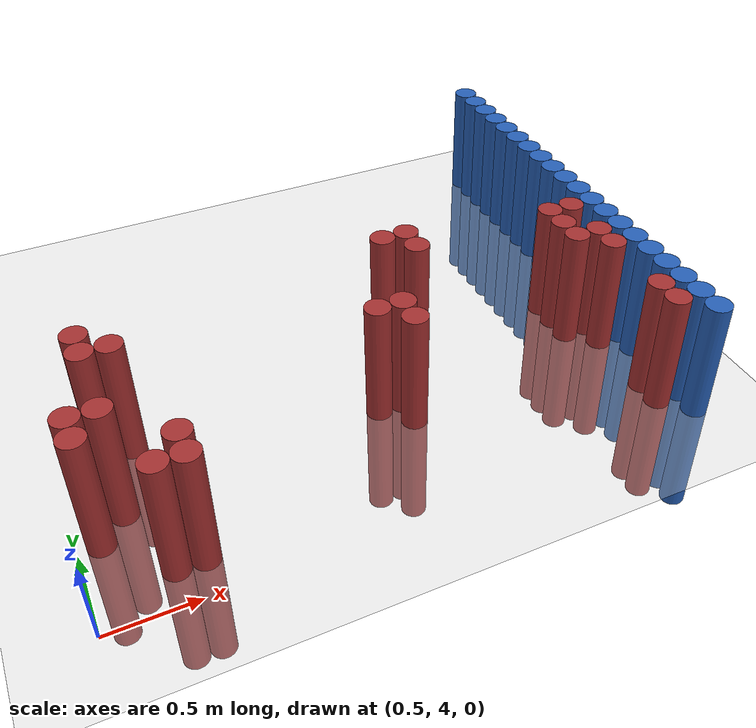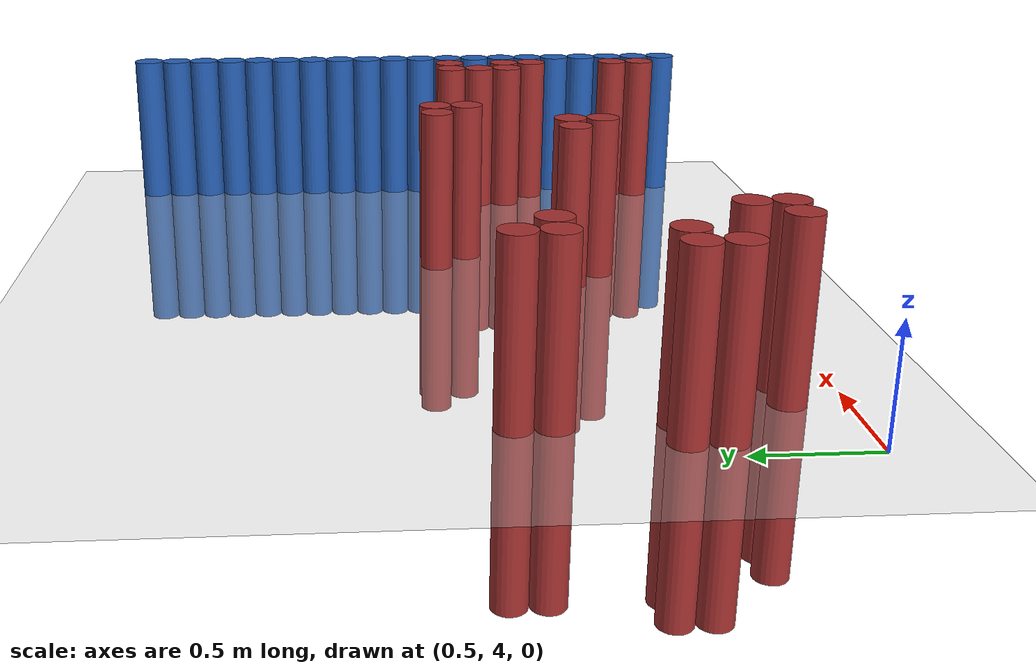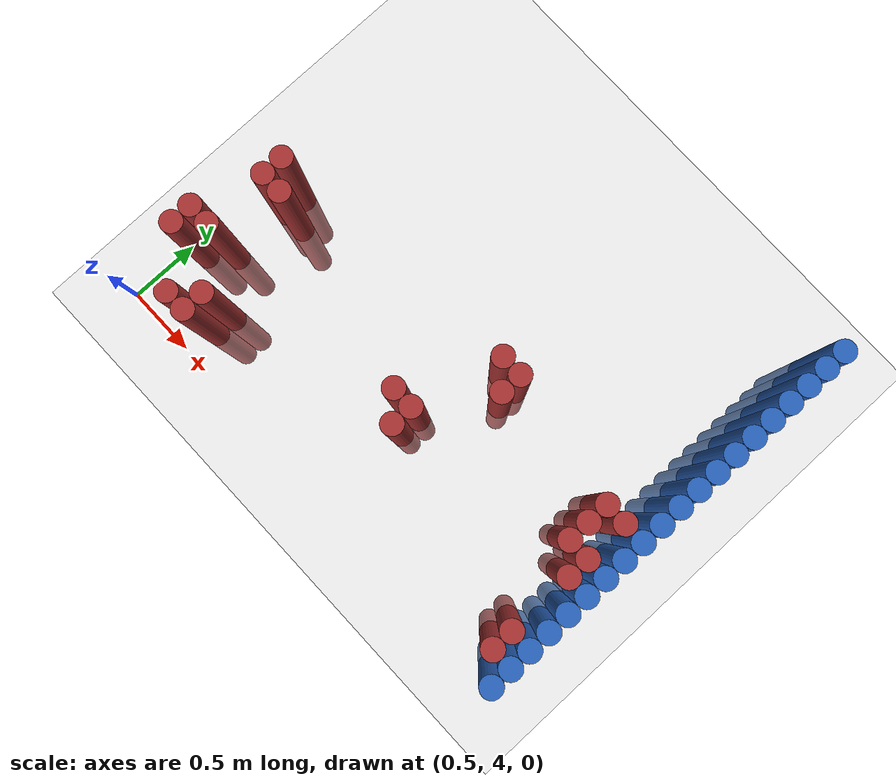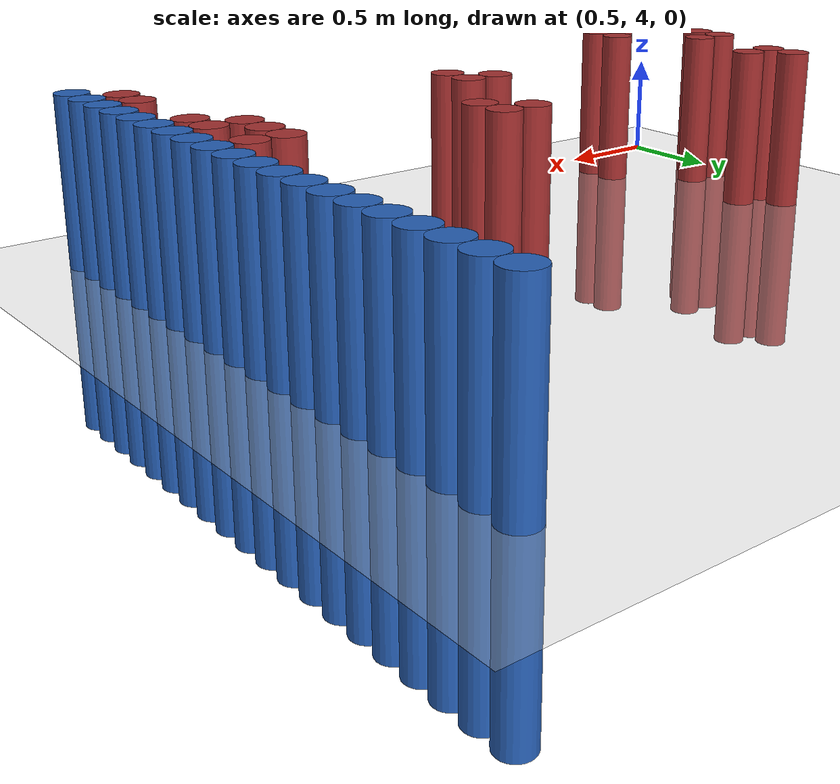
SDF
<sdf version="1.6">
 <world name="default">
  <model name="ground_plane">
   <static>1</static>
   <link name="link">
    <collision name="collision">
     <geometry><plane><normal>0 0 1</normal><size>100 100</size></plane></geometry>
     <surface><friction><ode><mu>100</mu><mu2>50</mu2></ode></friction></surface>
    </collision>
    <visual name="visual">
     <cast_shadows>0</cast_shadows>
     <geometry><plane><normal>0 0 1</normal><size>100 100</size></plane></geometry>
     <material>
      <script><uri>file://media/materials/scripts/gazebo.material</uri><name>Gazebo/Grey</name></script>
     </material>
    </visual>
   </link>
  </model>
  <model name="unit_cylinder_168">
   <static>1</static>
   <pose>3.925000 4.075000 0.000000 0.000000 0.000000 0.000000</pose>
   <link name="link">
    <inertial>
     <mass>1</mass>
     <inertia><ixx>0.145833</ixx><ixy>0</ixy><ixz>0</ixz><iyy>0.145833</iyy><iyz>0</iyz><izz>0.125</izz></inertia>
    </inertial>
    <collision name="collision">
     <geometry><cylinder><radius>0.075000</radius><length>1.5</length></cylinder></geometry>
    </collision>
    <visual name="visual">
     <geometry><cylinder><radius>0.075000</radius><length>1.5</length></cylinder></geometry>
     <material>
      <ambient>0.152000 0.379000 0.720000 1</ambient>
      <diffuse>0.152000 0.379000 0.720000 1</diffuse>
     </material>
     <material>
      <script><name>Gazebo/Grey</name><uri>file://media/materials/scripts/gazebo.material</uri></script>
     </material>
    </visual>
   </link>
  </model>
  <model name="unit_cylinder_170">
   <static>1</static>
   <pose>3.925000 4.225000 0.000000 0.000000 0.000000 0.000000</pose>
   <link name="link">
    <inertial>
     <mass>1</mass>
     <inertia><ixx>0.145833</ixx><ixy>0</ixy><ixz>0</ixz><iyy>0.145833</iyy><iyz>0</iyz><izz>0.125</izz></inertia>
    </inertial>
    <collision name="collision">
     <geometry><cylinder><radius>0.075000</radius><length>1.5</length></cylinder></geometry>
    </collision>
    <visual name="visual">
     <geometry><cylinder><radius>0.075000</radius><length>1.5</length></cylinder></geometry>
     <material>
      <ambient>0.152000 0.379000 0.720000 1</ambient>
      <diffuse>0.152000 0.379000 0.720000 1</diffuse>
     </material>
     <material>
      <script><name>Gazebo/Grey</name><uri>file://media/materials/scripts/gazebo.material</uri></script>
     </material>
    </visual>
   </link>
  </model>
  <model name="unit_cylinder_172">
   <static>1</static>
   <pose>3.925000 4.375000 0.000000 0.000000 0.000000 0.000000</pose>
   <link name="link">
    <inertial>
     <mass>1</mass>
     <inertia><ixx>0.145833</ixx><ixy>0</ixy><ixz>0</ixz><iyy>0.145833</iyy><iyz>0</iyz><izz>0.125</izz></inertia>
    </inertial>
    <collision name="collision">
     <geometry><cylinder><radius>0.075000</radius><length>1.5</length></cylinder></geometry>
    </collision>
    <visual name="visual">
     <geometry><cylinder><radius>0.075000</radius><length>1.5</length></cylinder></geometry>
     <material>
      <ambient>0.152000 0.379000 0.720000 1</ambient>
      <diffuse>0.152000 0.379000 0.720000 1</diffuse>
     </material>
     <material>
      <script><name>Gazebo/Grey</name><uri>file://media/materials/scripts/gazebo.material</uri></script>
     </material>
    </visual>
   </link>
  </model>
  <model name="unit_cylinder_174">
   <static>1</static>
   <pose>3.925000 4.525000 0.000000 0.000000 0.000000 0.000000</pose>
   <link name="link">
    <inertial>
     <mass>1</mass>
     <inertia><ixx>0.145833</ixx><ixy>0</ixy><ixz>0</ixz><iyy>0.145833</iyy><iyz>0</iyz><izz>0.125</izz></inertia>
    </inertial>
    <collision name="collision">
     <geometry><cylinder><radius>0.075000</radius><length>1.5</length></cylinder></geometry>
    </collision>
    <visual name="visual">
     <geometry><cylinder><radius>0.075000</radius><length>1.5</length></cylinder></geometry>
     <material>
      <ambient>0.152000 0.379000 0.720000 1</ambient>
      <diffuse>0.152000 0.379000 0.720000 1</diffuse>
     </material>
     <material>
      <script><name>Gazebo/Grey</name><uri>file://media/materials/scripts/gazebo.material</uri></script>
     </material>
    </visual>
   </link>
  </model>
  <model name="unit_cylinder_176">
   <static>1</static>
   <pose>3.925000 4.675000 0.000000 0.000000 0.000000 0.000000</pose>
   <link name="link">
    <inertial>
     <mass>1</mass>
     <inertia><ixx>0.145833</ixx><ixy>0</ixy><ixz>0</ixz><iyy>0.145833</iyy><iyz>0</iyz><izz>0.125</izz></inertia>
    </inertial>
    <collision name="collision">
     <geometry><cylinder><radius>0.075000</radius><length>1.5</length></cylinder></geometry>
    </collision>
    <visual name="visual">
     <geometry><cylinder><radius>0.075000</radius><length>1.5</length></cylinder></geometry>
     <material>
      <ambient>0.152000 0.379000 0.720000 1</ambient>
      <diffuse>0.152000 0.379000 0.720000 1</diffuse>
     </material>
     <material>
      <script><name>Gazebo/Grey</name><uri>file://media/materials/scripts/gazebo.material</uri></script>
     </material>
    </visual>
   </link>
  </model>
  <model name="unit_cylinder_178">
   <static>1</static>
   <pose>3.925000 4.825000 0.000000 0.000000 0.000000 0.000000</pose>
   <link name="link">
    <inertial>
     <mass>1</mass>
     <inertia><ixx>0.145833</ixx><ixy>0</ixy><ixz>0</ixz><iyy>0.145833</iyy><iyz>0</iyz><izz>0.125</izz></inertia>
    </inertial>
    <collision name="collision">
     <geometry><cylinder><radius>0.075000</radius><length>1.5</length></cylinder></geometry>
    </collision>
    <visual name="visual">
     <geometry><cylinder><radius>0.075000</radius><length>1.5</length></cylinder></geometry>
     <material>
      <ambient>0.152000 0.379000 0.720000 1</ambient>
      <diffuse>0.152000 0.379000 0.720000 1</diffuse>
     </material>
     <material>
      <script><name>Gazebo/Grey</name><uri>file://media/materials/scripts/gazebo.material</uri></script>
     </material>
    </visual>
   </link>
  </model>
  <model name="unit_cylinder_180">
   <static>1</static>
   <pose>3.925000 4.975000 0.000000 0.000000 0.000000 0.000000</pose>
   <link name="link">
    <inertial>
     <mass>1</mass>
     <inertia><ixx>0.145833</ixx><ixy>0</ixy><ixz>0</ixz><iyy>0.145833</iyy><iyz>0</iyz><izz>0.125</izz></inertia>
    </inertial>
    <collision name="collision">
     <geometry><cylinder><radius>0.075000</radius><length>1.5</length></cylinder></geometry>
    </collision>
    <visual name="visual">
     <geometry><cylinder><radius>0.075000</radius><length>1.5</length></cylinder></geometry>
     <material>
      <ambient>0.152000 0.379000 0.720000 1</ambient>
      <diffuse>0.152000 0.379000 0.720000 1</diffuse>
     </material>
     <material>
      <script><name>Gazebo/Grey</name><uri>file://media/materials/scripts/gazebo.material</uri></script>
     </material>
    </visual>
   </link>
  </model>
  <model name="unit_cylinder_182">
   <static>1</static>
   <pose>3.925000 5.125000 0.000000 0.000000 0.000000 0.000000</pose>
   <link name="link">
    <inertial>
     <mass>1</mass>
     <inertia><ixx>0.145833</ixx><ixy>0</ixy><ixz>0</ixz><iyy>0.145833</iyy><iyz>0</iyz><izz>0.125</izz></inertia>
    </inertial>
    <collision name="collision">
     <geometry><cylinder><radius>0.075000</radius><length>1.5</length></cylinder></geometry>
    </collision>
    <visual name="visual">
     <geometry><cylinder><radius>0.075000</radius><length>1.5</length></cylinder></geometry>
     <material>
      <ambient>0.152000 0.379000 0.720000 1</ambient>
      <diffuse>0.152000 0.379000 0.720000 1</diffuse>
     </material>
     <material>
      <script><name>Gazebo/Grey</name><uri>file://media/materials/scripts/gazebo.material</uri></script>
     </material>
    </visual>
   </link>
  </model>
  <model name="unit_cylinder_184">
   <static>1</static>
   <pose>3.925000 5.275000 0.000000 0.000000 0.000000 0.000000</pose>
   <link name="link">
    <inertial>
     <mass>1</mass>
     <inertia><ixx>0.145833</ixx><ixy>0</ixy><ixz>0</ixz><iyy>0.145833</iyy><iyz>0</iyz><izz>0.125</izz></inertia>
    </inertial>
    <collision name="collision">
     <geometry><cylinder><radius>0.075000</radius><length>1.5</length></cylinder></geometry>
    </collision>
    <visual name="visual">
     <geometry><cylinder><radius>0.075000</radius><length>1.5</length></cylinder></geometry>
     <material>
      <ambient>0.152000 0.379000 0.720000 1</ambient>
      <diffuse>0.152000 0.379000 0.720000 1</diffuse>
     </material>
     <material>
      <script><name>Gazebo/Grey</name><uri>file://media/materials/scripts/gazebo.material</uri></script>
     </material>
    </visual>
   </link>
  </model>
  <model name="unit_cylinder_186">
   <static>1</static>
   <pose>3.925000 5.425000 0.000000 0.000000 0.000000 0.000000</pose>
   <link name="link">
    <inertial>
     <mass>1</mass>
     <inertia><ixx>0.145833</ixx><ixy>0</ixy><ixz>0</ixz><iyy>0.145833</iyy><iyz>0</iyz><izz>0.125</izz></inertia>
    </inertial>
    <collision name="collision">
     <geometry><cylinder><radius>0.075000</radius><length>1.5</length></cylinder></geometry>
    </collision>
    <visual name="visual">
     <geometry><cylinder><radius>0.075000</radius><length>1.5</length></cylinder></geometry>
     <material>
      <ambient>0.152000 0.379000 0.720000 1</ambient>
      <diffuse>0.152000 0.379000 0.720000 1</diffuse>
     </material>
     <material>
      <script><name>Gazebo/Grey</name><uri>file://media/materials/scripts/gazebo.material</uri></script>
     </material>
    </visual>
   </link>
  </model>
  <model name="unit_cylinder_188">
   <static>1</static>
   <pose>3.925000 5.575000 0.000000 0.000000 0.000000 0.000000</pose>
   <link name="link">
    <inertial>
     <mass>1</mass>
     <inertia><ixx>0.145833</ixx><ixy>0</ixy><ixz>0</ixz><iyy>0.145833</iyy><iyz>0</iyz><izz>0.125</izz></inertia>
    </inertial>
    <collision name="collision">
     <geometry><cylinder><radius>0.075000</radius><length>1.5</length></cylinder></geometry>
    </collision>
    <visual name="visual">
     <geometry><cylinder><radius>0.075000</radius><length>1.5</length></cylinder></geometry>
     <material>
      <ambient>0.152000 0.379000 0.720000 1</ambient>
      <diffuse>0.152000 0.379000 0.720000 1</diffuse>
     </material>
     <material>
      <script><name>Gazebo/Grey</name><uri>file://media/materials/scripts/gazebo.material</uri></script>
     </material>
    </visual>
   </link>
  </model>
  <model name="unit_cylinder_190">
   <static>1</static>
   <pose>3.925000 5.725000 0.000000 0.000000 0.000000 0.000000</pose>
   <link name="link">
    <inertial>
     <mass>1</mass>
     <inertia><ixx>0.145833</ixx><ixy>0</ixy><ixz>0</ixz><iyy>0.145833</iyy><iyz>0</iyz><izz>0.125</izz></inertia>
    </inertial>
    <collision name="collision">
     <geometry><cylinder><radius>0.075000</radius><length>1.5</length></cylinder></geometry>
    </collision>
    <visual name="visual">
     <geometry><cylinder><radius>0.075000</radius><length>1.5</length></cylinder></geometry>
     <material>
      <ambient>0.152000 0.379000 0.720000 1</ambient>
      <diffuse>0.152000 0.379000 0.720000 1</diffuse>
     </material>
     <material>
      <script><name>Gazebo/Grey</name><uri>file://media/materials/scripts/gazebo.material</uri></script>
     </material>
    </visual>
   </link>
  </model>
  <model name="unit_cylinder_192">
   <static>1</static>
   <pose>3.925000 5.875000 0.000000 0.000000 0.000000 0.000000</pose>
   <link name="link">
    <inertial>
     <mass>1</mass>
     <inertia><ixx>0.145833</ixx><ixy>0</ixy><ixz>0</ixz><iyy>0.145833</iyy><iyz>0</iyz><izz>0.125</izz></inertia>
    </inertial>
    <collision name="collision">
     <geometry><cylinder><radius>0.075000</radius><length>1.5</length></cylinder></geometry>
    </collision>
    <visual name="visual">
     <geometry><cylinder><radius>0.075000</radius><length>1.5</length></cylinder></geometry>
     <material>
      <ambient>0.152000 0.379000 0.720000 1</ambient>
      <diffuse>0.152000 0.379000 0.720000 1</diffuse>
     </material>
     <material>
      <script><name>Gazebo/Grey</name><uri>file://media/materials/scripts/gazebo.material</uri></script>
     </material>
    </visual>
   </link>
  </model>
  <model name="unit_cylinder_194">
   <static>1</static>
   <pose>3.925000 6.025000 0.000000 0.000000 0.000000 0.000000</pose>
   <link name="link">
    <inertial>
     <mass>1</mass>
     <inertia><ixx>0.145833</ixx><ixy>0</ixy><ixz>0</ixz><iyy>0.145833</iyy><iyz>0</iyz><izz>0.125</izz></inertia>
    </inertial>
    <collision name="collision">
     <geometry><cylinder><radius>0.075000</radius><length>1.5</length></cylinder></geometry>
    </collision>
    <visual name="visual">
     <geometry><cylinder><radius>0.075000</radius><length>1.5</length></cylinder></geometry>
     <material>
      <ambient>0.152000 0.379000 0.720000 1</ambient>
      <diffuse>0.152000 0.379000 0.720000 1</diffuse>
     </material>
     <material>
      <script><name>Gazebo/Grey</name><uri>file://media/materials/scripts/gazebo.material</uri></script>
     </material>
    </visual>
   </link>
  </model>
  <model name="unit_cylinder_196">
   <static>1</static>
   <pose>3.925000 6.175000 0.000000 0.000000 0.000000 0.000000</pose>
   <link name="link">
    <inertial>
     <mass>1</mass>
     <inertia><ixx>0.145833</ixx><ixy>0</ixy><ixz>0</ixz><iyy>0.145833</iyy><iyz>0</iyz><izz>0.125</izz></inertia>
    </inertial>
    <collision name="collision">
     <geometry><cylinder><radius>0.075000</radius><length>1.5</length></cylinder></geometry>
    </collision>
    <visual name="visual">
     <geometry><cylinder><radius>0.075000</radius><length>1.5</length></cylinder></geometry>
     <material>
      <ambient>0.152000 0.379000 0.720000 1</ambient>
      <diffuse>0.152000 0.379000 0.720000 1</diffuse>
     </material>
     <material>
      <script><name>Gazebo/Grey</name><uri>file://media/materials/scripts/gazebo.material</uri></script>
     </material>
    </visual>
   </link>
  </model>
  <model name="unit_cylinder_198">
   <static>1</static>
   <pose>3.925000 6.325000 0.000000 0.000000 0.000000 0.000000</pose>
   <link name="link">
    <inertial>
     <mass>1</mass>
     <inertia><ixx>0.145833</ixx><ixy>0</ixy><ixz>0</ixz><iyy>0.145833</iyy><iyz>0</iyz><izz>0.125</izz></inertia>
    </inertial>
    <collision name="collision">
     <geometry><cylinder><radius>0.075000</radius><length>1.5</length></cylinder></geometry>
    </collision>
    <visual name="visual">
     <geometry><cylinder><radius>0.075000</radius><length>1.5</length></cylinder></geometry>
     <material>
      <ambient>0.152000 0.379000 0.720000 1</ambient>
      <diffuse>0.152000 0.379000 0.720000 1</diffuse>
     </material>
     <material>
      <script><name>Gazebo/Grey</name><uri>file://media/materials/scripts/gazebo.material</uri></script>
     </material>
    </visual>
   </link>
  </model>
  <model name="unit_cylinder_200">
   <static>1</static>
   <pose>3.925000 6.475000 0.000000 0.000000 0.000000 0.000000</pose>
   <link name="link">
    <inertial>
     <mass>1</mass>
     <inertia><ixx>0.145833</ixx><ixy>0</ixy><ixz>0</ixz><iyy>0.145833</iyy><iyz>0</iyz><izz>0.125</izz></inertia>
    </inertial>
    <collision name="collision">
     <geometry><cylinder><radius>0.075000</radius><length>1.5</length></cylinder></geometry>
    </collision>
    <visual name="visual">
     <geometry><cylinder><radius>0.075000</radius><length>1.5</length></cylinder></geometry>
     <material>
      <ambient>0.152000 0.379000 0.720000 1</ambient>
      <diffuse>0.152000 0.379000 0.720000 1</diffuse>
     </material>
     <material>
      <script><name>Gazebo/Grey</name><uri>file://media/materials/scripts/gazebo.material</uri></script>
     </material>
    </visual>
   </link>
  </model>
  <model name="unit_cylinder_202">
   <static>1</static>
   <pose>3.925000 6.625000 0.000000 0.000000 0.000000 0.000000</pose>
   <link name="link">
    <inertial>
     <mass>1</mass>
     <inertia><ixx>0.145833</ixx><ixy>0</ixy><ixz>0</ixz><iyy>0.145833</iyy><iyz>0</iyz><izz>0.125</izz></inertia>
    </inertial>
    <collision name="collision">
     <geometry><cylinder><radius>0.075000</radius><length>1.5</length></cylinder></geometry>
    </collision>
    <visual name="visual">
     <geometry><cylinder><radius>0.075000</radius><length>1.5</length></cylinder></geometry>
     <material>
      <ambient>0.152000 0.379000 0.720000 1</ambient>
      <diffuse>0.152000 0.379000 0.720000 1</diffuse>
     </material>
     <material>
      <script><name>Gazebo/Grey</name><uri>file://media/materials/scripts/gazebo.material</uri></script>
     </material>
    </visual>
   </link>
  </model>
  <model name="unit_cylinder_204">
   <static>1</static>
   <pose>3.925000 6.775000 0.000000 0.000000 0.000000 0.000000</pose>
   <link name="link">
    <inertial>
     <mass>1</mass>
     <inertia><ixx>0.145833</ixx><ixy>0</ixy><ixz>0</ixz><iyy>0.145833</iyy><iyz>0</iyz><izz>0.125</izz></inertia>
    </inertial>
    <collision name="collision">
     <geometry><cylinder><radius>0.075000</radius><length>1.5</length></cylinder></geometry>
    </collision>
    <visual name="visual">
     <geometry><cylinder><radius>0.075000</radius><length>1.5</length></cylinder></geometry>
     <material>
      <ambient>0.152000 0.379000 0.720000 1</ambient>
      <diffuse>0.152000 0.379000 0.720000 1</diffuse>
     </material>
     <material>
      <script><name>Gazebo/Grey</name><uri>file://media/materials/scripts/gazebo.material</uri></script>
     </material>
    </visual>
   </link>
  </model>
  <model name="unit_cylinder_206">
   <static>1</static>
   <pose>3.925000 6.925000 0.000000 0.000000 0.000000 0.000000</pose>
   <link name="link">
    <inertial>
     <mass>1</mass>
     <inertia><ixx>0.145833</ixx><ixy>0</ixy><ixz>0</ixz><iyy>0.145833</iyy><iyz>0</iyz><izz>0.125</izz></inertia>
    </inertial>
    <collision name="collision">
     <geometry><cylinder><radius>0.075000</radius><length>1.5</length></cylinder></geometry>
    </collision>
    <visual name="visual">
     <geometry><cylinder><radius>0.075000</radius><length>1.5</length></cylinder></geometry>
     <material>
      <ambient>0.152000 0.379000 0.720000 1</ambient>
      <diffuse>0.152000 0.379000 0.720000 1</diffuse>
     </material>
     <material>
      <script><name>Gazebo/Grey</name><uri>file://media/materials/scripts/gazebo.material</uri></script>
     </material>
    </visual>
   </link>
  </model>
  <model name="unit_cylinder_393">
   <static>1</static>
   <pose>0.625000 4.525000 0.000000 0.000000 0.000000 0.000000</pose>
   <link name="link">
    <inertial>
     <mass>1</mass>
     <inertia><ixx>0.145833</ixx><ixy>0</ixy><ixz>0</ixz><iyy>0.145833</iyy><iyz>0</iyz><izz>0.125</izz></inertia>
    </inertial>
    <collision name="collision">
     <geometry><cylinder><radius>0.075000</radius><length>1.5</length></cylinder></geometry>
    </collision>
    <visual name="visual">
     <geometry><cylinder><radius>0.075000</radius><length>1.5</length></cylinder></geometry>
     <material>
      <ambient>0.648000 0.192000 0.192000 1</ambient>
      <diffuse>0.648000 0.192000 0.192000 1</diffuse>
     </material>
     <material>
      <script><name>Gazebo/Grey</name><uri>file://media/materials/scripts/gazebo.material</uri></script>
     </material>
    </visual>
   </link>
  </model>
  <model name="unit_cylinder_394">
   <static>1</static>
   <pose>0.625000 4.675000 0.000000 0.000000 0.000000 0.000000</pose>
   <link name="link">
    <inertial>
     <mass>1</mass>
     <inertia><ixx>0.145833</ixx><ixy>0</ixy><ixz>0</ixz><iyy>0.145833</iyy><iyz>0</iyz><izz>0.125</izz></inertia>
    </inertial>
    <collision name="collision">
     <geometry><cylinder><radius>0.075000</radius><length>1.5</length></cylinder></geometry>
    </collision>
    <visual name="visual">
     <geometry><cylinder><radius>0.075000</radius><length>1.5</length></cylinder></geometry>
     <material>
      <ambient>0.648000 0.192000 0.192000 1</ambient>
      <diffuse>0.648000 0.192000 0.192000 1</diffuse>
     </material>
     <material>
      <script><name>Gazebo/Grey</name><uri>file://media/materials/scripts/gazebo.material</uri></script>
     </material>
    </visual>
   </link>
  </model>
  <model name="unit_cylinder_401">
   <static>1</static>
   <pose>0.775000 4.675000 0.000000 0.000000 0.000000 0.000000</pose>
   <link name="link">
    <inertial>
     <mass>1</mass>
     <inertia><ixx>0.145833</ixx><ixy>0</ixy><ixz>0</ixz><iyy>0.145833</iyy><iyz>0</iyz><izz>0.125</izz></inertia>
    </inertial>
    <collision name="collision">
     <geometry><cylinder><radius>0.075000</radius><length>1.5</length></cylinder></geometry>
    </collision>
    <visual name="visual">
     <geometry><cylinder><radius>0.075000</radius><length>1.5</length></cylinder></geometry>
     <material>
      <ambient>0.648000 0.192000 0.192000 1</ambient>
      <diffuse>0.648000 0.192000 0.192000 1</diffuse>
     </material>
     <material>
      <script><name>Gazebo/Grey</name><uri>file://media/materials/scripts/gazebo.material</uri></script>
     </material>
    </visual>
   </link>
  </model>
  <model name="unit_cylinder_402">
   <static>1</static>
   <pose>0.775000 5.125000 0.000000 0.000000 0.000000 0.000000</pose>
   <link name="link">
    <inertial>
     <mass>1</mass>
     <inertia><ixx>0.145833</ixx><ixy>0</ixy><ixz>0</ixz><iyy>0.145833</iyy><iyz>0</iyz><izz>0.125</izz></inertia>
    </inertial>
    <collision name="collision">
     <geometry><cylinder><radius>0.075000</radius><length>1.5</length></cylinder></geometry>
    </collision>
    <visual name="visual">
     <geometry><cylinder><radius>0.075000</radius><length>1.5</length></cylinder></geometry>
     <material>
      <ambient>0.648000 0.192000 0.192000 1</ambient>
      <diffuse>0.648000 0.192000 0.192000 1</diffuse>
     </material>
     <material>
      <script><name>Gazebo/Grey</name><uri>file://media/materials/scripts/gazebo.material</uri></script>
     </material>
    </visual>
   </link>
  </model>
  <model name="unit_cylinder_403">
   <static>1</static>
   <pose>0.775000 5.275000 0.000000 0.000000 0.000000 0.000000</pose>
   <link name="link">
    <inertial>
     <mass>1</mass>
     <inertia><ixx>0.145833</ixx><ixy>0</ixy><ixz>0</ixz><iyy>0.145833</iyy><iyz>0</iyz><izz>0.125</izz></inertia>
    </inertial>
    <collision name="collision">
     <geometry><cylinder><radius>0.075000</radius><length>1.5</length></cylinder></geometry>
    </collision>
    <visual name="visual">
     <geometry><cylinder><radius>0.075000</radius><length>1.5</length></cylinder></geometry>
     <material>
      <ambient>0.648000 0.192000 0.192000 1</ambient>
      <diffuse>0.648000 0.192000 0.192000 1</diffuse>
     </material>
     <material>
      <script><name>Gazebo/Grey</name><uri>file://media/materials/scripts/gazebo.material</uri></script>
     </material>
    </visual>
   </link>
  </model>
  <model name="unit_cylinder_405">
   <static>1</static>
   <pose>0.925000 4.225000 0.000000 0.000000 0.000000 0.000000</pose>
   <link name="link">
    <inertial>
     <mass>1</mass>
     <inertia><ixx>0.145833</ixx><ixy>0</ixy><ixz>0</ixz><iyy>0.145833</iyy><iyz>0</iyz><izz>0.125</izz></inertia>
    </inertial>
    <collision name="collision">
     <geometry><cylinder><radius>0.075000</radius><length>1.5</length></cylinder></geometry>
    </collision>
    <visual name="visual">
     <geometry><cylinder><radius>0.075000</radius><length>1.5</length></cylinder></geometry>
     <material>
      <ambient>0.648000 0.192000 0.192000 1</ambient>
      <diffuse>0.648000 0.192000 0.192000 1</diffuse>
     </material>
     <material>
      <script><name>Gazebo/Grey</name><uri>file://media/materials/scripts/gazebo.material</uri></script>
     </material>
    </visual>
   </link>
  </model>
  <model name="unit_cylinder_406">
   <static>1</static>
   <pose>0.925000 5.125000 0.000000 0.000000 0.000000 0.000000</pose>
   <link name="link">
    <inertial>
     <mass>1</mass>
     <inertia><ixx>0.145833</ixx><ixy>0</ixy><ixz>0</ixz><iyy>0.145833</iyy><iyz>0</iyz><izz>0.125</izz></inertia>
    </inertial>
    <collision name="collision">
     <geometry><cylinder><radius>0.075000</radius><length>1.5</length></cylinder></geometry>
    </collision>
    <visual name="visual">
     <geometry><cylinder><radius>0.075000</radius><length>1.5</length></cylinder></geometry>
     <material>
      <ambient>0.648000 0.192000 0.192000 1</ambient>
      <diffuse>0.648000 0.192000 0.192000 1</diffuse>
     </material>
     <material>
      <script><name>Gazebo/Grey</name><uri>file://media/materials/scripts/gazebo.material</uri></script>
     </material>
    </visual>
   </link>
  </model>
  <model name="unit_cylinder_408">
   <static>1</static>
   <pose>1.075000 4.225000 0.000000 0.000000 0.000000 0.000000</pose>
   <link name="link">
    <inertial>
     <mass>1</mass>
     <inertia><ixx>0.145833</ixx><ixy>0</ixy><ixz>0</ixz><iyy>0.145833</iyy><iyz>0</iyz><izz>0.125</izz></inertia>
    </inertial>
    <collision name="collision">
     <geometry><cylinder><radius>0.075000</radius><length>1.5</length></cylinder></geometry>
    </collision>
    <visual name="visual">
     <geometry><cylinder><radius>0.075000</radius><length>1.5</length></cylinder></geometry>
     <material>
      <ambient>0.648000 0.192000 0.192000 1</ambient>
      <diffuse>0.648000 0.192000 0.192000 1</diffuse>
     </material>
     <material>
      <script><name>Gazebo/Grey</name><uri>file://media/materials/scripts/gazebo.material</uri></script>
     </material>
    </visual>
   </link>
  </model>
  <model name="unit_cylinder_409">
   <static>1</static>
   <pose>1.075000 4.375000 0.000000 0.000000 0.000000 0.000000</pose>
   <link name="link">
    <inertial>
     <mass>1</mass>
     <inertia><ixx>0.145833</ixx><ixy>0</ixy><ixz>0</ixz><iyy>0.145833</iyy><iyz>0</iyz><izz>0.125</izz></inertia>
    </inertial>
    <collision name="collision">
     <geometry><cylinder><radius>0.075000</radius><length>1.5</length></cylinder></geometry>
    </collision>
    <visual name="visual">
     <geometry><cylinder><radius>0.075000</radius><length>1.5</length></cylinder></geometry>
     <material>
      <ambient>0.648000 0.192000 0.192000 1</ambient>
      <diffuse>0.648000 0.192000 0.192000 1</diffuse>
     </material>
     <material>
      <script><name>Gazebo/Grey</name><uri>file://media/materials/scripts/gazebo.material</uri></script>
     </material>
    </visual>
   </link>
  </model>
  <model name="unit_cylinder_435">
   <static>1</static>
   <pose>2.275000 4.825000 0.000000 0.000000 0.000000 0.000000</pose>
   <link name="link">
    <inertial>
     <mass>1</mass>
     <inertia><ixx>0.145833</ixx><ixy>0</ixy><ixz>0</ixz><iyy>0.145833</iyy><iyz>0</iyz><izz>0.125</izz></inertia>
    </inertial>
    <collision name="collision">
     <geometry><cylinder><radius>0.075000</radius><length>1.5</length></cylinder></geometry>
    </collision>
    <visual name="visual">
     <geometry><cylinder><radius>0.075000</radius><length>1.5</length></cylinder></geometry>
     <material>
      <ambient>0.648000 0.192000 0.192000 1</ambient>
      <diffuse>0.648000 0.192000 0.192000 1</diffuse>
     </material>
     <material>
      <script><name>Gazebo/Grey</name><uri>file://media/materials/scripts/gazebo.material</uri></script>
     </material>
    </visual>
   </link>
  </model>
  <model name="unit_cylinder_437">
   <static>1</static>
   <pose>2.425000 4.675000 0.000000 0.000000 0.000000 0.000000</pose>
   <link name="link">
    <inertial>
     <mass>1</mass>
     <inertia><ixx>0.145833</ixx><ixy>0</ixy><ixz>0</ixz><iyy>0.145833</iyy><iyz>0</iyz><izz>0.125</izz></inertia>
    </inertial>
    <collision name="collision">
     <geometry><cylinder><radius>0.075000</radius><length>1.5</length></cylinder></geometry>
    </collision>
    <visual name="visual">
     <geometry><cylinder><radius>0.075000</radius><length>1.5</length></cylinder></geometry>
     <material>
      <ambient>0.648000 0.192000 0.192000 1</ambient>
      <diffuse>0.648000 0.192000 0.192000 1</diffuse>
     </material>
     <material>
      <script><name>Gazebo/Grey</name><uri>file://media/materials/scripts/gazebo.material</uri></script>
     </material>
    </visual>
   </link>
  </model>
  <model name="unit_cylinder_438">
   <static>1</static>
   <pose>2.425000 4.825000 0.000000 0.000000 0.000000 0.000000</pose>
   <link name="link">
    <inertial>
     <mass>1</mass>
     <inertia><ixx>0.145833</ixx><ixy>0</ixy><ixz>0</ixz><iyy>0.145833</iyy><iyz>0</iyz><izz>0.125</izz></inertia>
    </inertial>
    <collision name="collision">
     <geometry><cylinder><radius>0.075000</radius><length>1.5</length></cylinder></geometry>
    </collision>
    <visual name="visual">
     <geometry><cylinder><radius>0.075000</radius><length>1.5</length></cylinder></geometry>
     <material>
      <ambient>0.648000 0.192000 0.192000 1</ambient>
      <diffuse>0.648000 0.192000 0.192000 1</diffuse>
     </material>
     <material>
      <script><name>Gazebo/Grey</name><uri>file://media/materials/scripts/gazebo.material</uri></script>
     </material>
    </visual>
   </link>
  </model>
  <model name="unit_cylinder_439">
   <static>1</static>
   <pose>2.575000 5.425000 0.000000 0.000000 0.000000 0.000000</pose>
   <link name="link">
    <inertial>
     <mass>1</mass>
     <inertia><ixx>0.145833</ixx><ixy>0</ixy><ixz>0</ixz><iyy>0.145833</iyy><iyz>0</iyz><izz>0.125</izz></inertia>
    </inertial>
    <collision name="collision">
     <geometry><cylinder><radius>0.075000</radius><length>1.5</length></cylinder></geometry>
    </collision>
    <visual name="visual">
     <geometry><cylinder><radius>0.075000</radius><length>1.5</length></cylinder></geometry>
     <material>
      <ambient>0.648000 0.192000 0.192000 1</ambient>
      <diffuse>0.648000 0.192000 0.192000 1</diffuse>
     </material>
     <material>
      <script><name>Gazebo/Grey</name><uri>file://media/materials/scripts/gazebo.material</uri></script>
     </material>
    </visual>
   </link>
  </model>
  <model name="unit_cylinder_446">
   <static>1</static>
   <pose>2.725000 5.275000 0.000000 0.000000 0.000000 0.000000</pose>
   <link name="link">
    <inertial>
     <mass>1</mass>
     <inertia><ixx>0.145833</ixx><ixy>0</ixy><ixz>0</ixz><iyy>0.145833</iyy><iyz>0</iyz><izz>0.125</izz></inertia>
    </inertial>
    <collision name="collision">
     <geometry><cylinder><radius>0.075000</radius><length>1.5</length></cylinder></geometry>
    </collision>
    <visual name="visual">
     <geometry><cylinder><radius>0.075000</radius><length>1.5</length></cylinder></geometry>
     <material>
      <ambient>0.648000 0.192000 0.192000 1</ambient>
      <diffuse>0.648000 0.192000 0.192000 1</diffuse>
     </material>
     <material>
      <script><name>Gazebo/Grey</name><uri>file://media/materials/scripts/gazebo.material</uri></script>
     </material>
    </visual>
   </link>
  </model>
  <model name="unit_cylinder_447">
   <static>1</static>
   <pose>2.725000 5.425000 0.000000 0.000000 0.000000 0.000000</pose>
   <link name="link">
    <inertial>
     <mass>1</mass>
     <inertia><ixx>0.145833</ixx><ixy>0</ixy><ixz>0</ixz><iyy>0.145833</iyy><iyz>0</iyz><izz>0.125</izz></inertia>
    </inertial>
    <collision name="collision">
     <geometry><cylinder><radius>0.075000</radius><length>1.5</length></cylinder></geometry>
    </collision>
    <visual name="visual">
     <geometry><cylinder><radius>0.075000</radius><length>1.5</length></cylinder></geometry>
     <material>
      <ambient>0.648000 0.192000 0.192000 1</ambient>
      <diffuse>0.648000 0.192000 0.192000 1</diffuse>
     </material>
     <material>
      <script><name>Gazebo/Grey</name><uri>file://media/materials/scripts/gazebo.material</uri></script>
     </material>
    </visual>
   </link>
  </model>
  <model name="unit_cylinder_497">
   <static>1</static>
   <pose>3.625000 4.975000 0.000000 0.000000 0.000000 0.000000</pose>
   <link name="link">
    <inertial>
     <mass>1</mass>
     <inertia><ixx>0.145833</ixx><ixy>0</ixy><ixz>0</ixz><iyy>0.145833</iyy><iyz>0</iyz><izz>0.125</izz></inertia>
    </inertial>
    <collision name="collision">
     <geometry><cylinder><radius>0.075000</radius><length>1.5</length></cylinder></geometry>
    </collision>
    <visual name="visual">
     <geometry><cylinder><radius>0.075000</radius><length>1.5</length></cylinder></geometry>
     <material>
      <ambient>0.648000 0.192000 0.192000 1</ambient>
      <diffuse>0.648000 0.192000 0.192000 1</diffuse>
     </material>
     <material>
      <script><name>Gazebo/Grey</name><uri>file://media/materials/scripts/gazebo.material</uri></script>
     </material>
    </visual>
   </link>
  </model>
  <model name="unit_cylinder_498">
   <static>1</static>
   <pose>3.625000 5.125000 0.000000 0.000000 0.000000 0.000000</pose>
   <link name="link">
    <inertial>
     <mass>1</mass>
     <inertia><ixx>0.145833</ixx><ixy>0</ixy><ixz>0</ixz><iyy>0.145833</iyy><iyz>0</iyz><izz>0.125</izz></inertia>
    </inertial>
    <collision name="collision">
     <geometry><cylinder><radius>0.075000</radius><length>1.5</length></cylinder></geometry>
    </collision>
    <visual name="visual">
     <geometry><cylinder><radius>0.075000</radius><length>1.5</length></cylinder></geometry>
     <material>
      <ambient>0.648000 0.192000 0.192000 1</ambient>
      <diffuse>0.648000 0.192000 0.192000 1</diffuse>
     </material>
     <material>
      <script><name>Gazebo/Grey</name><uri>file://media/materials/scripts/gazebo.material</uri></script>
     </material>
    </visual>
   </link>
  </model>
  <model name="unit_cylinder_499">
   <static>1</static>
   <pose>3.625000 5.275000 0.000000 0.000000 0.000000 0.000000</pose>
   <link name="link">
    <inertial>
     <mass>1</mass>
     <inertia><ixx>0.145833</ixx><ixy>0</ixy><ixz>0</ixz><iyy>0.145833</iyy><iyz>0</iyz><izz>0.125</izz></inertia>
    </inertial>
    <collision name="collision">
     <geometry><cylinder><radius>0.075000</radius><length>1.5</length></cylinder></geometry>
    </collision>
    <visual name="visual">
     <geometry><cylinder><radius>0.075000</radius><length>1.5</length></cylinder></geometry>
     <material>
      <ambient>0.648000 0.192000 0.192000 1</ambient>
      <diffuse>0.648000 0.192000 0.192000 1</diffuse>
     </material>
     <material>
      <script><name>Gazebo/Grey</name><uri>file://media/materials/scripts/gazebo.material</uri></script>
     </material>
    </visual>
   </link>
  </model>
  <model name="unit_cylinder_526">
   <static>1</static>
   <pose>3.775000 4.225000 0.000000 0.000000 0.000000 0.000000</pose>
   <link name="link">
    <inertial>
     <mass>1</mass>
     <inertia><ixx>0.145833</ixx><ixy>0</ixy><ixz>0</ixz><iyy>0.145833</iyy><iyz>0</iyz><izz>0.125</izz></inertia>
    </inertial>
    <collision name="collision">
     <geometry><cylinder><radius>0.075000</radius><length>1.5</length></cylinder></geometry>
    </collision>
    <visual name="visual">
     <geometry><cylinder><radius>0.075000</radius><length>1.5</length></cylinder></geometry>
     <material>
      <ambient>0.648000 0.192000 0.192000 1</ambient>
      <diffuse>0.648000 0.192000 0.192000 1</diffuse>
     </material>
     <material>
      <script><name>Gazebo/Grey</name><uri>file://media/materials/scripts/gazebo.material</uri></script>
     </material>
    </visual>
   </link>
  </model>
  <model name="unit_cylinder_527">
   <static>1</static>
   <pose>3.775000 4.375000 0.000000 0.000000 0.000000 0.000000</pose>
   <link name="link">
    <inertial>
     <mass>1</mass>
     <inertia><ixx>0.145833</ixx><ixy>0</ixy><ixz>0</ixz><iyy>0.145833</iyy><iyz>0</iyz><izz>0.125</izz></inertia>
    </inertial>
    <collision name="collision">
     <geometry><cylinder><radius>0.075000</radius><length>1.5</length></cylinder></geometry>
    </collision>
    <visual name="visual">
     <geometry><cylinder><radius>0.075000</radius><length>1.5</length></cylinder></geometry>
     <material>
      <ambient>0.648000 0.192000 0.192000 1</ambient>
      <diffuse>0.648000 0.192000 0.192000 1</diffuse>
     </material>
     <material>
      <script><name>Gazebo/Grey</name><uri>file://media/materials/scripts/gazebo.material</uri></script>
     </material>
    </visual>
   </link>
  </model>
  <model name="unit_cylinder_528">
   <static>1</static>
   <pose>3.775000 4.825000 0.000000 0.000000 0.000000 0.000000</pose>
   <link name="link">
    <inertial>
     <mass>1</mass>
     <inertia><ixx>0.145833</ixx><ixy>0</ixy><ixz>0</ixz><iyy>0.145833</iyy><iyz>0</iyz><izz>0.125</izz></inertia>
    </inertial>
    <collision name="collision">
     <geometry><cylinder><radius>0.075000</radius><length>1.5</length></cylinder></geometry>
    </collision>
    <visual name="visual">
     <geometry><cylinder><radius>0.075000</radius><length>1.5</length></cylinder></geometry>
     <material>
      <ambient>0.648000 0.192000 0.192000 1</ambient>
      <diffuse>0.648000 0.192000 0.192000 1</diffuse>
     </material>
     <material>
      <script><name>Gazebo/Grey</name><uri>file://media/materials/scripts/gazebo.material</uri></script>
     </material>
    </visual>
   </link>
  </model>
  <model name="unit_cylinder_529">
   <static>1</static>
   <pose>3.775000 4.975000 0.000000 0.000000 0.000000 0.000000</pose>
   <link name="link">
    <inertial>
     <mass>1</mass>
     <inertia><ixx>0.145833</ixx><ixy>0</ixy><ixz>0</ixz><iyy>0.145833</iyy><iyz>0</iyz><izz>0.125</izz></inertia>
    </inertial>
    <collision name="collision">
     <geometry><cylinder><radius>0.075000</radius><length>1.5</length></cylinder></geometry>
    </collision>
    <visual name="visual">
     <geometry><cylinder><radius>0.075000</radius><length>1.5</length></cylinder></geometry>
     <material>
      <ambient>0.648000 0.192000 0.192000 1</ambient>
      <diffuse>0.648000 0.192000 0.192000 1</diffuse>
     </material>
     <material>
      <script><name>Gazebo/Grey</name><uri>file://media/materials/scripts/gazebo.material</uri></script>
     </material>
    </visual>
   </link>
  </model>
  <model name="unit_cylinder_530">
   <static>1</static>
   <pose>3.775000 5.275000 0.000000 0.000000 0.000000 0.000000</pose>
   <link name="link">
    <inertial>
     <mass>1</mass>
     <inertia><ixx>0.145833</ixx><ixy>0</ixy><ixz>0</ixz><iyy>0.145833</iyy><iyz>0</iyz><izz>0.125</izz></inertia>
    </inertial>
    <collision name="collision">
     <geometry><cylinder><radius>0.075000</radius><length>1.5</length></cylinder></geometry>
    </collision>
    <visual name="visual">
     <geometry><cylinder><radius>0.075000</radius><length>1.5</length></cylinder></geometry>
     <material>
      <ambient>0.648000 0.192000 0.192000 1</ambient>
      <diffuse>0.648000 0.192000 0.192000 1</diffuse>
     </material>
     <material>
      <script><name>Gazebo/Grey</name><uri>file://media/materials/scripts/gazebo.material</uri></script>
     </material>
    </visual>
   </link>
  </model>
  <model name="unit_cylinder_571">
   <static>1</static>
   <pose>3.925000 4.075000 0.000000 0.000000 0.000000 0.000000</pose>
   <link name="link">
    <inertial>
     <mass>1</mass>
     <inertia><ixx>0.145833</ixx><ixy>0</ixy><ixz>0</ixz><iyy>0.145833</iyy><iyz>0</iyz><izz>0.125</izz></inertia>
    </inertial>
    <collision name="collision">
     <geometry><cylinder><radius>0.075000</radius><length>1.5</length></cylinder></geometry>
    </collision>
    <visual name="visual">
     <geometry><cylinder><radius>0.075000</radius><length>1.5</length></cylinder></geometry>
     <material>
      <ambient>0.152000 0.379000 0.720000 1</ambient>
      <diffuse>0.152000 0.379000 0.720000 1</diffuse>
     </material>
     <material>
      <script><name>Gazebo/Grey</name><uri>file://media/materials/scripts/gazebo.material</uri></script>
     </material>
    </visual>
   </link>
  </model>
  <model name="unit_cylinder_572">
   <static>1</static>
   <pose>3.925000 4.225000 0.000000 0.000000 0.000000 0.000000</pose>
   <link name="link">
    <inertial>
     <mass>1</mass>
     <inertia><ixx>0.145833</ixx><ixy>0</ixy><ixz>0</ixz><iyy>0.145833</iyy><iyz>0</iyz><izz>0.125</izz></inertia>
    </inertial>
    <collision name="collision">
     <geometry><cylinder><radius>0.075000</radius><length>1.5</length></cylinder></geometry>
    </collision>
    <visual name="visual">
     <geometry><cylinder><radius>0.075000</radius><length>1.5</length></cylinder></geometry>
     <material>
      <ambient>0.152000 0.379000 0.720000 1</ambient>
      <diffuse>0.152000 0.379000 0.720000 1</diffuse>
     </material>
     <material>
      <script><name>Gazebo/Grey</name><uri>file://media/materials/scripts/gazebo.material</uri></script>
     </material>
    </visual>
   </link>
  </model>
  <model name="unit_cylinder_573">
   <static>1</static>
   <pose>3.925000 4.375000 0.000000 0.000000 0.000000 0.000000</pose>
   <link name="link">
    <inertial>
     <mass>1</mass>
     <inertia><ixx>0.145833</ixx><ixy>0</ixy><ixz>0</ixz><iyy>0.145833</iyy><iyz>0</iyz><izz>0.125</izz></inertia>
    </inertial>
    <collision name="collision">
     <geometry><cylinder><radius>0.075000</radius><length>1.5</length></cylinder></geometry>
    </collision>
    <visual name="visual">
     <geometry><cylinder><radius>0.075000</radius><length>1.5</length></cylinder></geometry>
     <material>
      <ambient>0.152000 0.379000 0.720000 1</ambient>
      <diffuse>0.152000 0.379000 0.720000 1</diffuse>
     </material>
     <material>
      <script><name>Gazebo/Grey</name><uri>file://media/materials/scripts/gazebo.material</uri></script>
     </material>
    </visual>
   </link>
  </model>
  <model name="unit_cylinder_574">
   <static>1</static>
   <pose>3.925000 4.525000 0.000000 0.000000 0.000000 0.000000</pose>
   <link name="link">
    <inertial>
     <mass>1</mass>
     <inertia><ixx>0.145833</ixx><ixy>0</ixy><ixz>0</ixz><iyy>0.145833</iyy><iyz>0</iyz><izz>0.125</izz></inertia>
    </inertial>
    <collision name="collision">
     <geometry><cylinder><radius>0.075000</radius><length>1.5</length></cylinder></geometry>
    </collision>
    <visual name="visual">
     <geometry><cylinder><radius>0.075000</radius><length>1.5</length></cylinder></geometry>
     <material>
      <ambient>0.152000 0.379000 0.720000 1</ambient>
      <diffuse>0.152000 0.379000 0.720000 1</diffuse>
     </material>
     <material>
      <script><name>Gazebo/Grey</name><uri>file://media/materials/scripts/gazebo.material</uri></script>
     </material>
    </visual>
   </link>
  </model>
  <model name="unit_cylinder_575">
   <static>1</static>
   <pose>3.925000 4.675000 0.000000 0.000000 0.000000 0.000000</pose>
   <link name="link">
    <inertial>
     <mass>1</mass>
     <inertia><ixx>0.145833</ixx><ixy>0</ixy><ixz>0</ixz><iyy>0.145833</iyy><iyz>0</iyz><izz>0.125</izz></inertia>
    </inertial>
    <collision name="collision">
     <geometry><cylinder><radius>0.075000</radius><length>1.5</length></cylinder></geometry>
    </collision>
    <visual name="visual">
     <geometry><cylinder><radius>0.075000</radius><length>1.5</length></cylinder></geometry>
     <material>
      <ambient>0.152000 0.379000 0.720000 1</ambient>
      <diffuse>0.152000 0.379000 0.720000 1</diffuse>
     </material>
     <material>
      <script><name>Gazebo/Grey</name><uri>file://media/materials/scripts/gazebo.material</uri></script>
     </material>
    </visual>
   </link>
  </model>
  <model name="unit_cylinder_576">
   <static>1</static>
   <pose>3.925000 4.825000 0.000000 0.000000 0.000000 0.000000</pose>
   <link name="link">
    <inertial>
     <mass>1</mass>
     <inertia><ixx>0.145833</ixx><ixy>0</ixy><ixz>0</ixz><iyy>0.145833</iyy><iyz>0</iyz><izz>0.125</izz></inertia>
    </inertial>
    <collision name="collision">
     <geometry><cylinder><radius>0.075000</radius><length>1.5</length></cylinder></geometry>
    </collision>
    <visual name="visual">
     <geometry><cylinder><radius>0.075000</radius><length>1.5</length></cylinder></geometry>
     <material>
      <ambient>0.152000 0.379000 0.720000 1</ambient>
      <diffuse>0.152000 0.379000 0.720000 1</diffuse>
     </material>
     <material>
      <script><name>Gazebo/Grey</name><uri>file://media/materials/scripts/gazebo.material</uri></script>
     </material>
    </visual>
   </link>
  </model>
  <model name="unit_cylinder_577">
   <static>1</static>
   <pose>3.925000 4.975000 0.000000 0.000000 0.000000 0.000000</pose>
   <link name="link">
    <inertial>
     <mass>1</mass>
     <inertia><ixx>0.145833</ixx><ixy>0</ixy><ixz>0</ixz><iyy>0.145833</iyy><iyz>0</iyz><izz>0.125</izz></inertia>
    </inertial>
    <collision name="collision">
     <geometry><cylinder><radius>0.075000</radius><length>1.5</length></cylinder></geometry>
    </collision>
    <visual name="visual">
     <geometry><cylinder><radius>0.075000</radius><length>1.5</length></cylinder></geometry>
     <material>
      <ambient>0.152000 0.379000 0.720000 1</ambient>
      <diffuse>0.152000 0.379000 0.720000 1</diffuse>
     </material>
     <material>
      <script><name>Gazebo/Grey</name><uri>file://media/materials/scripts/gazebo.material</uri></script>
     </material>
    </visual>
   </link>
  </model>
  <model name="unit_cylinder_578">
   <static>1</static>
   <pose>3.925000 5.125000 0.000000 0.000000 0.000000 0.000000</pose>
   <link name="link">
    <inertial>
     <mass>1</mass>
     <inertia><ixx>0.145833</ixx><ixy>0</ixy><ixz>0</ixz><iyy>0.145833</iyy><iyz>0</iyz><izz>0.125</izz></inertia>
    </inertial>
    <collision name="collision">
     <geometry><cylinder><radius>0.075000</radius><length>1.5</length></cylinder></geometry>
    </collision>
    <visual name="visual">
     <geometry><cylinder><radius>0.075000</radius><length>1.5</length></cylinder></geometry>
     <material>
      <ambient>0.152000 0.379000 0.720000 1</ambient>
      <diffuse>0.152000 0.379000 0.720000 1</diffuse>
     </material>
     <material>
      <script><name>Gazebo/Grey</name><uri>file://media/materials/scripts/gazebo.material</uri></script>
     </material>
    </visual>
   </link>
  </model>
  <model name="unit_cylinder_579">
   <static>1</static>
   <pose>3.925000 5.275000 0.000000 0.000000 0.000000 0.000000</pose>
   <link name="link">
    <inertial>
     <mass>1</mass>
     <inertia><ixx>0.145833</ixx><ixy>0</ixy><ixz>0</ixz><iyy>0.145833</iyy><iyz>0</iyz><izz>0.125</izz></inertia>
    </inertial>
    <collision name="collision">
     <geometry><cylinder><radius>0.075000</radius><length>1.5</length></cylinder></geometry>
    </collision>
    <visual name="visual">
     <geometry><cylinder><radius>0.075000</radius><length>1.5</length></cylinder></geometry>
     <material>
      <ambient>0.152000 0.379000 0.720000 1</ambient>
      <diffuse>0.152000 0.379000 0.720000 1</diffuse>
     </material>
     <material>
      <script><name>Gazebo/Grey</name><uri>file://media/materials/scripts/gazebo.material</uri></script>
     </material>
    </visual>
   </link>
  </model>
  <model name="unit_cylinder_580">
   <static>1</static>
   <pose>3.925000 5.425000 0.000000 0.000000 0.000000 0.000000</pose>
   <link name="link">
    <inertial>
     <mass>1</mass>
     <inertia><ixx>0.145833</ixx><ixy>0</ixy><ixz>0</ixz><iyy>0.145833</iyy><iyz>0</iyz><izz>0.125</izz></inertia>
    </inertial>
    <collision name="collision">
     <geometry><cylinder><radius>0.075000</radius><length>1.5</length></cylinder></geometry>
    </collision>
    <visual name="visual">
     <geometry><cylinder><radius>0.075000</radius><length>1.5</length></cylinder></geometry>
     <material>
      <ambient>0.152000 0.379000 0.720000 1</ambient>
      <diffuse>0.152000 0.379000 0.720000 1</diffuse>
     </material>
     <material>
      <script><name>Gazebo/Grey</name><uri>file://media/materials/scripts/gazebo.material</uri></script>
     </material>
    </visual>
   </link>
  </model>
 </world>
</sdf>
